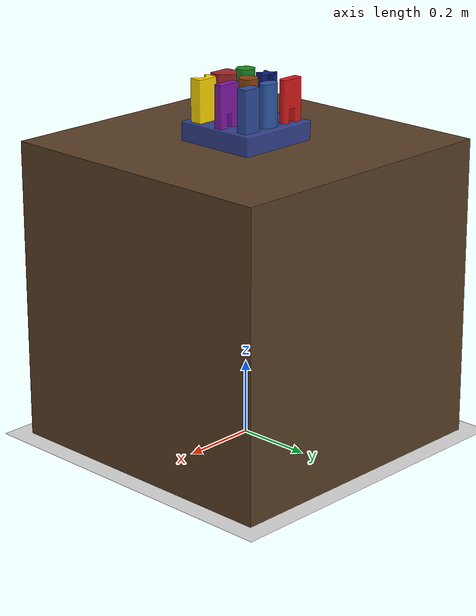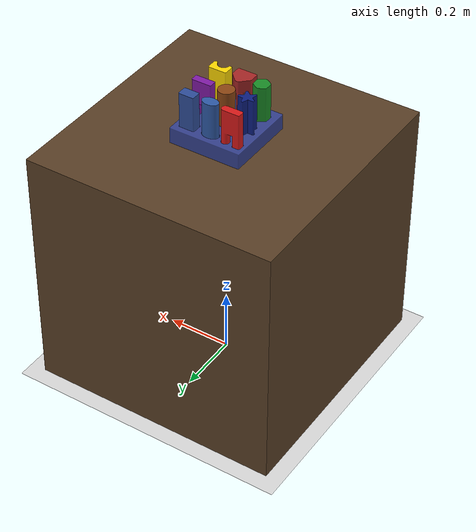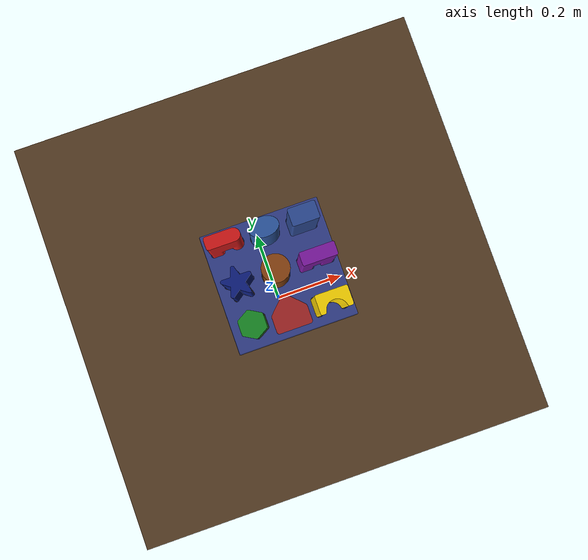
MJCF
<mujoco model="FMB L long">
  <compiler angle="radian" autolimits="true" meshdir="obj" texturedir="obj"/>
  <option integrator="RK4"/>
  <visual><global offwidth="1280" offheight="960"/></visual>
  <include file="floor_isaac.xml"/>
  <asset>
    <texture type="2d" name="light_wood" file="light_wood_v3.png"/>
    <material name="wt" texture="light_wood" specular="0.5" shininess="0.5" rgba="0.5 0.5 0.5 1"/>
    <mesh name="board_vis" file="hole_board_1/hole_board_1.obj"/>
    <mesh name="bc0" file="hole_board_1/hole_board_1_collision_0.obj"/>
    <mesh name="bc1" file="hole_board_1/hole_board_1_collision_1.obj"/>
    <mesh name="bc2" file="hole_board_1/hole_board_1_collision_10.obj"/>
    <mesh name="bc3" file="hole_board_1/hole_board_1_collision_100.obj"/>
    <mesh name="bc4" file="hole_board_1/hole_board_1_collision_101.obj"/>
    <mesh name="bc5" file="hole_board_1/hole_board_1_collision_102.obj"/>
    <mesh name="bc6" file="hole_board_1/hole_board_1_collision_103.obj"/>
    <mesh name="bc7" file="hole_board_1/hole_board_1_collision_104.obj"/>
    <mesh name="bc8" file="hole_board_1/hole_board_1_collision_105.obj"/>
    <mesh name="bc9" file="hole_board_1/hole_board_1_collision_106.obj"/>
    <mesh name="bc10" file="hole_board_1/hole_board_1_collision_107.obj"/>
    <mesh name="bc11" file="hole_board_1/hole_board_1_collision_108.obj"/>
    <mesh name="bc12" file="hole_board_1/hole_board_1_collision_109.obj"/>
    <mesh name="bc13" file="hole_board_1/hole_board_1_collision_11.obj"/>
    <mesh name="bc14" file="hole_board_1/hole_board_1_collision_110.obj"/>
    <mesh name="bc15" file="hole_board_1/hole_board_1_collision_111.obj"/>
    <mesh name="bc16" file="hole_board_1/hole_board_1_collision_112.obj"/>
    <mesh name="bc17" file="hole_board_1/hole_board_1_collision_113.obj"/>
    <mesh name="bc18" file="hole_board_1/hole_board_1_collision_114.obj"/>
    <mesh name="bc19" file="hole_board_1/hole_board_1_collision_115.obj"/>
    <mesh name="bc20" file="hole_board_1/hole_board_1_collision_116.obj"/>
    <mesh name="bc21" file="hole_board_1/hole_board_1_collision_117.obj"/>
    <mesh name="bc22" file="hole_board_1/hole_board_1_collision_118.obj"/>
    <mesh name="bc23" file="hole_board_1/hole_board_1_collision_119.obj"/>
    <mesh name="bc24" file="hole_board_1/hole_board_1_collision_12.obj"/>
    <mesh name="bc25" file="hole_board_1/hole_board_1_collision_120.obj"/>
    <mesh name="bc26" file="hole_board_1/hole_board_1_collision_121.obj"/>
    <mesh name="bc27" file="hole_board_1/hole_board_1_collision_122.obj"/>
    <mesh name="bc28" file="hole_board_1/hole_board_1_collision_123.obj"/>
    <mesh name="bc29" file="hole_board_1/hole_board_1_collision_124.obj"/>
    <mesh name="bc30" file="hole_board_1/hole_board_1_collision_125.obj"/>
    <mesh name="bc31" file="hole_board_1/hole_board_1_collision_126.obj"/>
    <mesh name="bc32" file="hole_board_1/hole_board_1_collision_127.obj"/>
    <mesh name="bc33" file="hole_board_1/hole_board_1_collision_128.obj"/>
    <mesh name="bc34" file="hole_board_1/hole_board_1_collision_13.obj"/>
    <mesh name="bc35" file="hole_board_1/hole_board_1_collision_14.obj"/>
    <mesh name="bc36" file="hole_board_1/hole_board_1_collision_15.obj"/>
    <mesh name="bc37" file="hole_board_1/hole_board_1_collision_16.obj"/>
    <mesh name="bc38" file="hole_board_1/hole_board_1_collision_17.obj"/>
    <mesh name="bc39" file="hole_board_1/hole_board_1_collision_18.obj"/>
    <mesh name="bc40" file="hole_board_1/hole_board_1_collision_19.obj"/>
    <mesh name="bc41" file="hole_board_1/hole_board_1_collision_2.obj"/>
    <mesh name="bc42" file="hole_board_1/hole_board_1_collision_20.obj"/>
    <mesh name="bc43" file="hole_board_1/hole_board_1_collision_21.obj"/>
    <mesh name="bc44" file="hole_board_1/hole_board_1_collision_22.obj"/>
    <mesh name="bc45" file="hole_board_1/hole_board_1_collision_23.obj"/>
    <mesh name="bc46" file="hole_board_1/hole_board_1_collision_24.obj"/>
    <mesh name="bc47" file="hole_board_1/hole_board_1_collision_25.obj"/>
    <mesh name="bc48" file="hole_board_1/hole_board_1_collision_26.obj"/>
    <mesh name="bc49" file="hole_board_1/hole_board_1_collision_27.obj"/>
    <mesh name="bc50" file="hole_board_1/hole_board_1_collision_28.obj"/>
    <mesh name="bc51" file="hole_board_1/hole_board_1_collision_29.obj"/>
    <mesh name="bc52" file="hole_board_1/hole_board_1_collision_3.obj"/>
    <mesh name="bc53" file="hole_board_1/hole_board_1_collision_30.obj"/>
    <mesh name="bc54" file="hole_board_1/hole_board_1_collision_31.obj"/>
    <mesh name="bc55" file="hole_board_1/hole_board_1_collision_32.obj"/>
    <mesh name="bc56" file="hole_board_1/hole_board_1_collision_33.obj"/>
    <mesh name="bc57" file="hole_board_1/hole_board_1_collision_34.obj"/>
    <mesh name="bc58" file="hole_board_1/hole_board_1_collision_35.obj"/>
    <mesh name="bc59" file="hole_board_1/hole_board_1_collision_36.obj"/>
    <mesh name="bc60" file="hole_board_1/hole_board_1_collision_37.obj"/>
    <mesh name="bc61" file="hole_board_1/hole_board_1_collision_38.obj"/>
    <mesh name="bc62" file="hole_board_1/hole_board_1_collision_39.obj"/>
    <mesh name="bc63" file="hole_board_1/hole_board_1_collision_4.obj"/>
    <mesh name="bc64" file="hole_board_1/hole_board_1_collision_40.obj"/>
    <mesh name="bc65" file="hole_board_1/hole_board_1_collision_41.obj"/>
    <mesh name="bc66" file="hole_board_1/hole_board_1_collision_42.obj"/>
    <mesh name="bc67" file="hole_board_1/hole_board_1_collision_43.obj"/>
    <mesh name="bc68" file="hole_board_1/hole_board_1_collision_44.obj"/>
    <mesh name="bc69" file="hole_board_1/hole_board_1_collision_45.obj"/>
    <mesh name="bc70" file="hole_board_1/hole_board_1_collision_46.obj"/>
    <mesh name="bc71" file="hole_board_1/hole_board_1_collision_47.obj"/>
    <mesh name="bc72" file="hole_board_1/hole_board_1_collision_48.obj"/>
    <mesh name="bc73" file="hole_board_1/hole_board_1_collision_49.obj"/>
    <mesh name="bc74" file="hole_board_1/hole_board_1_collision_5.obj"/>
    <mesh name="bc75" file="hole_board_1/hole_board_1_collision_50.obj"/>
    <mesh name="bc76" file="hole_board_1/hole_board_1_collision_51.obj"/>
    <mesh name="bc77" file="hole_board_1/hole_board_1_collision_52.obj"/>
    <mesh name="bc78" file="hole_board_1/hole_board_1_collision_53.obj"/>
    <mesh name="bc79" file="hole_board_1/hole_board_1_collision_54.obj"/>
    <mesh name="bc80" file="hole_board_1/hole_board_1_collision_55.obj"/>
    <mesh name="bc81" file="hole_board_1/hole_board_1_collision_56.obj"/>
    <mesh name="bc82" file="hole_board_1/hole_board_1_collision_57.obj"/>
    <mesh name="bc83" file="hole_board_1/hole_board_1_collision_58.obj"/>
    <mesh name="bc84" file="hole_board_1/hole_board_1_collision_59.obj"/>
    <mesh name="bc85" file="hole_board_1/hole_board_1_collision_6.obj"/>
    <mesh name="bc86" file="hole_board_1/hole_board_1_collision_60.obj"/>
    <mesh name="bc87" file="hole_board_1/hole_board_1_collision_61.obj"/>
    <mesh name="bc88" file="hole_board_1/hole_board_1_collision_62.obj"/>
    <mesh name="bc89" file="hole_board_1/hole_board_1_collision_63.obj"/>
    <mesh name="bc90" file="hole_board_1/hole_board_1_collision_64.obj"/>
    <mesh name="bc91" file="hole_board_1/hole_board_1_collision_65.obj"/>
    <mesh name="bc92" file="hole_board_1/hole_board_1_collision_66.obj"/>
    <mesh name="bc93" file="hole_board_1/hole_board_1_collision_67.obj"/>
    <mesh name="bc94" file="hole_board_1/hole_board_1_collision_68.obj"/>
    <mesh name="bc95" file="hole_board_1/hole_board_1_collision_69.obj"/>
    <mesh name="bc96" file="hole_board_1/hole_board_1_collision_7.obj"/>
    <mesh name="bc97" file="hole_board_1/hole_board_1_collision_70.obj"/>
    <mesh name="bc98" file="hole_board_1/hole_board_1_collision_71.obj"/>
    <mesh name="bc99" file="hole_board_1/hole_board_1_collision_72.obj"/>
    <mesh name="bc100" file="hole_board_1/hole_board_1_collision_73.obj"/>
    <mesh name="bc101" file="hole_board_1/hole_board_1_collision_74.obj"/>
    <mesh name="bc102" file="hole_board_1/hole_board_1_collision_75.obj"/>
    <mesh name="bc103" file="hole_board_1/hole_board_1_collision_76.obj"/>
    <mesh name="bc104" file="hole_board_1/hole_board_1_collision_77.obj"/>
    <mesh name="bc105" file="hole_board_1/hole_board_1_collision_78.obj"/>
    <mesh name="bc106" file="hole_board_1/hole_board_1_collision_79.obj"/>
    <mesh name="bc107" file="hole_board_1/hole_board_1_collision_8.obj"/>
    <mesh name="bc108" file="hole_board_1/hole_board_1_collision_80.obj"/>
    <mesh name="bc109" file="hole_board_1/hole_board_1_collision_81.obj"/>
    <mesh name="bc110" file="hole_board_1/hole_board_1_collision_82.obj"/>
    <mesh name="bc111" file="hole_board_1/hole_board_1_collision_83.obj"/>
    <mesh name="bc112" file="hole_board_1/hole_board_1_collision_84.obj"/>
    <mesh name="bc113" file="hole_board_1/hole_board_1_collision_85.obj"/>
    <mesh name="bc114" file="hole_board_1/hole_board_1_collision_86.obj"/>
    <mesh name="bc115" file="hole_board_1/hole_board_1_collision_87.obj"/>
    <mesh name="bc116" file="hole_board_1/hole_board_1_collision_88.obj"/>
    <mesh name="bc117" file="hole_board_1/hole_board_1_collision_89.obj"/>
    <mesh name="bc118" file="hole_board_1/hole_board_1_collision_9.obj"/>
    <mesh name="bc119" file="hole_board_1/hole_board_1_collision_90.obj"/>
    <mesh name="bc120" file="hole_board_1/hole_board_1_collision_91.obj"/>
    <mesh name="bc121" file="hole_board_1/hole_board_1_collision_92.obj"/>
    <mesh name="bc122" file="hole_board_1/hole_board_1_collision_93.obj"/>
    <mesh name="bc123" file="hole_board_1/hole_board_1_collision_94.obj"/>
    <mesh name="bc124" file="hole_board_1/hole_board_1_collision_95.obj"/>
    <mesh name="bc125" file="hole_board_1/hole_board_1_collision_96.obj"/>
    <mesh name="bc126" file="hole_board_1/hole_board_1_collision_97.obj"/>
    <mesh name="bc127" file="hole_board_1/hole_board_1_collision_98.obj"/>
    <mesh name="bc128" file="hole_board_1/hole_board_1_collision_99.obj"/>
    <mesh name="peg_circle_L_long" file="peg_circle_L_long/peg_circle_L_long.obj"/>
    <mesh name="peg_circle_L_long_c0" file="peg_circle_L_long/peg_circle_L_long_collision_0.obj"/>
    <mesh name="peg_oval_L_long" file="peg_oval_L_long/peg_oval_L_long.obj"/>
    <mesh name="peg_oval_L_long_c0" file="peg_oval_L_long/peg_oval_L_long_collision_0.obj"/>
    <mesh name="peg_rectangle_L_long" file="peg_rectangle_L_long/peg_rectangle_L_long.obj"/>
    <mesh name="peg_rectangle_L_long_c0" file="peg_rectangle_L_long/peg_rectangle_L_long_collision_0.obj"/>
    <mesh name="peg_hexagon_L_long" file="peg_hexagon_L_long/peg_hexagon_L_long.obj"/>
    <mesh name="peg_hexagon_L_long_c0" file="peg_hexagon_L_long/peg_hexagon_L_long_collision_0.obj"/>
    <mesh name="peg_arch_L_long" file="peg_arch_L_long/peg_arch_L_long.obj"/>
    <mesh name="peg_arch_L_long_c0" file="peg_arch_L_long/peg_arch_L_long_collision_0.obj"/>
    <mesh name="peg_arch_L_long_c1" file="peg_arch_L_long/peg_arch_L_long_collision_1.obj"/>
    <mesh name="peg_star_L_long" file="peg_star_L_long/peg_star_L_long.obj"/>
    <mesh name="peg_star_L_long_c0" file="peg_star_L_long/peg_star_L_long_collision_0.obj"/>
    <mesh name="peg_star_L_long_c1" file="peg_star_L_long/peg_star_L_long_collision_1.obj"/>
    <mesh name="peg_star_L_long_c2" file="peg_star_L_long/peg_star_L_long_collision_2.obj"/>
    <mesh name="peg_star_L_long_c3" file="peg_star_L_long/peg_star_L_long_collision_3.obj"/>
    <mesh name="peg_3prong_L_long" file="peg_3prong_L_long/peg_3prong_L_long.obj"/>
    <mesh name="peg_3prong_L_long_c0" file="peg_3prong_L_long/peg_3prong_L_long_collision_0.obj"/>
    <mesh name="peg_3prong_L_long_c1" file="peg_3prong_L_long/peg_3prong_L_long_collision_1.obj"/>
    <mesh name="peg_3prong_L_long_c10" file="peg_3prong_L_long/peg_3prong_L_long_collision_10.obj"/>
    <mesh name="peg_3prong_L_long_c11" file="peg_3prong_L_long/peg_3prong_L_long_collision_11.obj"/>
    <mesh name="peg_3prong_L_long_c2" file="peg_3prong_L_long/peg_3prong_L_long_collision_2.obj"/>
    <mesh name="peg_3prong_L_long_c3" file="peg_3prong_L_long/peg_3prong_L_long_collision_3.obj"/>
    <mesh name="peg_3prong_L_long_c4" file="peg_3prong_L_long/peg_3prong_L_long_collision_4.obj"/>
    <mesh name="peg_3prong_L_long_c5" file="peg_3prong_L_long/peg_3prong_L_long_collision_5.obj"/>
    <mesh name="peg_3prong_L_long_c6" file="peg_3prong_L_long/peg_3prong_L_long_collision_6.obj"/>
    <mesh name="peg_3prong_L_long_c7" file="peg_3prong_L_long/peg_3prong_L_long_collision_7.obj"/>
    <mesh name="peg_3prong_L_long_c8" file="peg_3prong_L_long/peg_3prong_L_long_collision_8.obj"/>
    <mesh name="peg_3prong_L_long_c9" file="peg_3prong_L_long/peg_3prong_L_long_collision_9.obj"/>
    <mesh name="peg_doublesquare_L_long" file="peg_doublesquare_L_long/peg_doublesquare_L_long.obj"/>
    <mesh name="peg_doublesquare_L_long_c0" file="peg_doublesquare_L_long/peg_doublesquare_L_long_collision_0.obj"/>
    <mesh name="peg_doublesquare_L_long_c1" file="peg_doublesquare_L_long/peg_doublesquare_L_long_collision_1.obj"/>
    <mesh name="peg_doublesquare_L_long_c2" file="peg_doublesquare_L_long/peg_doublesquare_L_long_collision_2.obj"/>
    <mesh name="peg_squarecircle_L_long" file="peg_squarecircle_L_long/peg_squarecircle_L_long.obj"/>
    <mesh name="peg_squarecircle_L_long_c0" file="peg_squarecircle_L_long/peg_squarecircle_L_long_collision_0.obj"/>
    <mesh name="peg_squarecircle_L_long_c1" file="peg_squarecircle_L_long/peg_squarecircle_L_long_collision_1.obj"/>
    <mesh name="peg_squarecircle_L_long_c2" file="peg_squarecircle_L_long/peg_squarecircle_L_long_collision_2.obj"/>
  </asset>
  <worldbody>
    <body name="table"><geom type="box" size="0.4 0.4 0.4" pos="0 0 0.4" material="wt" mass="100"/></body>
    <body name="board" pos="0 0 0.8">
      <geom mesh="board_vis" group="2" type="mesh" contype="0" conaffinity="0" rgba="0.2 0.25 0.55 1"/>
      <geom mesh="bc0" type="mesh" rgba="0 0 0 0"/>
      <geom mesh="bc1" type="mesh" rgba="0 0 0 0"/>
      <geom mesh="bc2" type="mesh" rgba="0 0 0 0"/>
      <geom mesh="bc3" type="mesh" rgba="0 0 0 0"/>
      <geom mesh="bc4" type="mesh" rgba="0 0 0 0"/>
      <geom mesh="bc5" type="mesh" rgba="0 0 0 0"/>
      <geom mesh="bc6" type="mesh" rgba="0 0 0 0"/>
      <geom mesh="bc7" type="mesh" rgba="0 0 0 0"/>
      <geom mesh="bc8" type="mesh" rgba="0 0 0 0"/>
      <geom mesh="bc9" type="mesh" rgba="0 0 0 0"/>
      <geom mesh="bc10" type="mesh" rgba="0 0 0 0"/>
      <geom mesh="bc11" type="mesh" rgba="0 0 0 0"/>
      <geom mesh="bc12" type="mesh" rgba="0 0 0 0"/>
      <geom mesh="bc13" type="mesh" rgba="0 0 0 0"/>
      <geom mesh="bc14" type="mesh" rgba="0 0 0 0"/>
      <geom mesh="bc15" type="mesh" rgba="0 0 0 0"/>
      <geom mesh="bc16" type="mesh" rgba="0 0 0 0"/>
      <geom mesh="bc17" type="mesh" rgba="0 0 0 0"/>
      <geom mesh="bc18" type="mesh" rgba="0 0 0 0"/>
      <geom mesh="bc19" type="mesh" rgba="0 0 0 0"/>
      <geom mesh="bc20" type="mesh" rgba="0 0 0 0"/>
      <geom mesh="bc21" type="mesh" rgba="0 0 0 0"/>
      <geom mesh="bc22" type="mesh" rgba="0 0 0 0"/>
      <geom mesh="bc23" type="mesh" rgba="0 0 0 0"/>
      <geom mesh="bc24" type="mesh" rgba="0 0 0 0"/>
      <geom mesh="bc25" type="mesh" rgba="0 0 0 0"/>
      <geom mesh="bc26" type="mesh" rgba="0 0 0 0"/>
      <geom mesh="bc27" type="mesh" rgba="0 0 0 0"/>
      <geom mesh="bc28" type="mesh" rgba="0 0 0 0"/>
      <geom mesh="bc29" type="mesh" rgba="0 0 0 0"/>
      <geom mesh="bc30" type="mesh" rgba="0 0 0 0"/>
      <geom mesh="bc31" type="mesh" rgba="0 0 0 0"/>
      <geom mesh="bc32" type="mesh" rgba="0 0 0 0"/>
      <geom mesh="bc33" type="mesh" rgba="0 0 0 0"/>
      <geom mesh="bc34" type="mesh" rgba="0 0 0 0"/>
      <geom mesh="bc35" type="mesh" rgba="0 0 0 0"/>
      <geom mesh="bc36" type="mesh" rgba="0 0 0 0"/>
      <geom mesh="bc37" type="mesh" rgba="0 0 0 0"/>
      <geom mesh="bc38" type="mesh" rgba="0 0 0 0"/>
      <geom mesh="bc39" type="mesh" rgba="0 0 0 0"/>
      <geom mesh="bc40" type="mesh" rgba="0 0 0 0"/>
      <geom mesh="bc41" type="mesh" rgba="0 0 0 0"/>
      <geom mesh="bc42" type="mesh" rgba="0 0 0 0"/>
      <geom mesh="bc43" type="mesh" rgba="0 0 0 0"/>
      <geom mesh="bc44" type="mesh" rgba="0 0 0 0"/>
      <geom mesh="bc45" type="mesh" rgba="0 0 0 0"/>
      <geom mesh="bc46" type="mesh" rgba="0 0 0 0"/>
      <geom mesh="bc47" type="mesh" rgba="0 0 0 0"/>
      <geom mesh="bc48" type="mesh" rgba="0 0 0 0"/>
      <geom mesh="bc49" type="mesh" rgba="0 0 0 0"/>
      <geom mesh="bc50" type="mesh" rgba="0 0 0 0"/>
      <geom mesh="bc51" type="mesh" rgba="0 0 0 0"/>
      <geom mesh="bc52" type="mesh" rgba="0 0 0 0"/>
      <geom mesh="bc53" type="mesh" rgba="0 0 0 0"/>
      <geom mesh="bc54" type="mesh" rgba="0 0 0 0"/>
      <geom mesh="bc55" type="mesh" rgba="0 0 0 0"/>
      <geom mesh="bc56" type="mesh" rgba="0 0 0 0"/>
      <geom mesh="bc57" type="mesh" rgba="0 0 0 0"/>
      <geom mesh="bc58" type="mesh" rgba="0 0 0 0"/>
      <geom mesh="bc59" type="mesh" rgba="0 0 0 0"/>
      <geom mesh="bc60" type="mesh" rgba="0 0 0 0"/>
      <geom mesh="bc61" type="mesh" rgba="0 0 0 0"/>
      <geom mesh="bc62" type="mesh" rgba="0 0 0 0"/>
      <geom mesh="bc63" type="mesh" rgba="0 0 0 0"/>
      <geom mesh="bc64" type="mesh" rgba="0 0 0 0"/>
      <geom mesh="bc65" type="mesh" rgba="0 0 0 0"/>
      <geom mesh="bc66" type="mesh" rgba="0 0 0 0"/>
      <geom mesh="bc67" type="mesh" rgba="0 0 0 0"/>
      <geom mesh="bc68" type="mesh" rgba="0 0 0 0"/>
      <geom mesh="bc69" type="mesh" rgba="0 0 0 0"/>
      <geom mesh="bc70" type="mesh" rgba="0 0 0 0"/>
      <geom mesh="bc71" type="mesh" rgba="0 0 0 0"/>
      <geom mesh="bc72" type="mesh" rgba="0 0 0 0"/>
      <geom mesh="bc73" type="mesh" rgba="0 0 0 0"/>
      <geom mesh="bc74" type="mesh" rgba="0 0 0 0"/>
      <geom mesh="bc75" type="mesh" rgba="0 0 0 0"/>
      <geom mesh="bc76" type="mesh" rgba="0 0 0 0"/>
      <geom mesh="bc77" type="mesh" rgba="0 0 0 0"/>
      <geom mesh="bc78" type="mesh" rgba="0 0 0 0"/>
      <geom mesh="bc79" type="mesh" rgba="0 0 0 0"/>
      <geom mesh="bc80" type="mesh" rgba="0 0 0 0"/>
      <geom mesh="bc81" type="mesh" rgba="0 0 0 0"/>
      <geom mesh="bc82" type="mesh" rgba="0 0 0 0"/>
      <geom mesh="bc83" type="mesh" rgba="0 0 0 0"/>
      <geom mesh="bc84" type="mesh" rgba="0 0 0 0"/>
      <geom mesh="bc85" type="mesh" rgba="0 0 0 0"/>
      <geom mesh="bc86" type="mesh" rgba="0 0 0 0"/>
      <geom mesh="bc87" type="mesh" rgba="0 0 0 0"/>
      <geom mesh="bc88" type="mesh" rgba="0 0 0 0"/>
      <geom mesh="bc89" type="mesh" rgba="0 0 0 0"/>
      <geom mesh="bc90" type="mesh" rgba="0 0 0 0"/>
      <geom mesh="bc91" type="mesh" rgba="0 0 0 0"/>
      <geom mesh="bc92" type="mesh" rgba="0 0 0 0"/>
      <geom mesh="bc93" type="mesh" rgba="0 0 0 0"/>
      <geom mesh="bc94" type="mesh" rgba="0 0 0 0"/>
      <geom mesh="bc95" type="mesh" rgba="0 0 0 0"/>
      <geom mesh="bc96" type="mesh" rgba="0 0 0 0"/>
      <geom mesh="bc97" type="mesh" rgba="0 0 0 0"/>
      <geom mesh="bc98" type="mesh" rgba="0 0 0 0"/>
      <geom mesh="bc99" type="mesh" rgba="0 0 0 0"/>
      <geom mesh="bc100" type="mesh" rgba="0 0 0 0"/>
      <geom mesh="bc101" type="mesh" rgba="0 0 0 0"/>
      <geom mesh="bc102" type="mesh" rgba="0 0 0 0"/>
      <geom mesh="bc103" type="mesh" rgba="0 0 0 0"/>
      <geom mesh="bc104" type="mesh" rgba="0 0 0 0"/>
      <geom mesh="bc105" type="mesh" rgba="0 0 0 0"/>
      <geom mesh="bc106" type="mesh" rgba="0 0 0 0"/>
      <geom mesh="bc107" type="mesh" rgba="0 0 0 0"/>
      <geom mesh="bc108" type="mesh" rgba="0 0 0 0"/>
      <geom mesh="bc109" type="mesh" rgba="0 0 0 0"/>
      <geom mesh="bc110" type="mesh" rgba="0 0 0 0"/>
      <geom mesh="bc111" type="mesh" rgba="0 0 0 0"/>
      <geom mesh="bc112" type="mesh" rgba="0 0 0 0"/>
      <geom mesh="bc113" type="mesh" rgba="0 0 0 0"/>
      <geom mesh="bc114" type="mesh" rgba="0 0 0 0"/>
      <geom mesh="bc115" type="mesh" rgba="0 0 0 0"/>
      <geom mesh="bc116" type="mesh" rgba="0 0 0 0"/>
      <geom mesh="bc117" type="mesh" rgba="0 0 0 0"/>
      <geom mesh="bc118" type="mesh" rgba="0 0 0 0"/>
      <geom mesh="bc119" type="mesh" rgba="0 0 0 0"/>
      <geom mesh="bc120" type="mesh" rgba="0 0 0 0"/>
      <geom mesh="bc121" type="mesh" rgba="0 0 0 0"/>
      <geom mesh="bc122" type="mesh" rgba="0 0 0 0"/>
      <geom mesh="bc123" type="mesh" rgba="0 0 0 0"/>
      <geom mesh="bc124" type="mesh" rgba="0 0 0 0"/>
      <geom mesh="bc125" type="mesh" rgba="0 0 0 0"/>
      <geom mesh="bc126" type="mesh" rgba="0 0 0 0"/>
      <geom mesh="bc127" type="mesh" rgba="0 0 0 0"/>
      <geom mesh="bc128" type="mesh" rgba="0 0 0 0"/>
      <geom type="box" pos="0 0 0.005" size="0.115 0.115 0.005" rgba="0 0 0 0"/>
      <geom type="box" pos="-0.112 0 0.025" size="0.003 0.115 0.025" rgba="0 0 0 0"/>
      <geom type="box" pos="0.112 0 0.025" size="0.003 0.115 0.025" rgba="0 0 0 0"/>
      <geom type="box" pos="0 0.112 0.025" size="0.115 0.003 0.025" rgba="0 0 0 0"/>
      <geom type="box" pos="0 -0.112 0.025" size="0.115 0.003 0.025" rgba="0 0 0 0"/>
      <geom type="box" pos="-0.04 -0.0687 0.025" size="0.003 0.0463 0.025" rgba="0 0 0 0"/>
      <geom type="box" pos="-0.04 0.0518 0.025" size="0.003 0.0158 0.025" rgba="0 0 0 0"/>
      <geom type="box" pos="-0.04 0.1063 0.025" size="0.003 0.0087 0.025" rgba="0 0 0 0"/>
      <geom type="box" pos="0.0295 -0.0290 0.025" size="0.003 0.0860 0.025" rgba="0 0 0 0"/>
      <geom type="box" pos="0.0295 0.1070 0.025" size="0.003 0.0080 0.025" rgba="0 0 0 0"/>
      <geom type="box" pos="0.0000 -0.035 0.025" size="0.1150 0.003 0.025" rgba="0 0 0 0"/>
      <geom type="box" pos="-0.1087 0.036 0.025" size="0.0063 0.003 0.025" rgba="0 0 0 0"/>
      <geom type="box" pos="-0.0365 0.036 0.025" size="0.0050 0.003 0.025" rgba="0 0 0 0"/>
      <geom type="box" pos="0.0700 0.036 0.025" size="0.0450 0.003 0.025" rgba="0 0 0 0"/>
    </body>
    <body name="circle" pos="-0.0032499999999999057 0.005000000000000102 0.811">
      <joint type="free"/>
      <geom mesh="peg_circle_L_long" group="2" type="mesh" contype="0" conaffinity="0" rgba="0.55 0.27 0.07 1"/>
      <geom mesh="peg_circle_L_long_c0" type="mesh" rgba="0 0 0 0"/>
    </body>
    <body name="oval" pos="0.001000000000000098 0.07800000000000017 0.811">
      <joint type="free"/>
      <geom mesh="peg_oval_L_long" group="2" type="mesh" contype="0" conaffinity="0" rgba="0.18 0.35 0.65 1"/>
      <geom mesh="peg_oval_L_long_c0" type="mesh" rgba="0 0 0 0"/>
    </body>
    <body name="rectangle" pos="0.07225000000000016 0.07725000000000017 0.811">
      <joint type="free"/>
      <geom mesh="peg_rectangle_L_long" group="2" type="mesh" contype="0" conaffinity="0" rgba="0.18 0.3 0.6 1"/>
      <geom mesh="peg_rectangle_L_long_c0" type="mesh" rgba="0 0 0 0"/>
    </body>
    <body name="hexagon" pos="-0.07124999999999997 -0.07124999999999997 0.811">
      <joint type="free"/>
      <geom mesh="peg_hexagon_L_long" group="2" type="mesh" contype="0" conaffinity="0" rgba="0.1 0.55 0.15 1"/>
      <geom mesh="peg_hexagon_L_long_c0" type="mesh" rgba="0 0 0 0"/>
    </body>
    <body name="arch" pos="0.07175000000000016 -0.07799999999999997 0.811">
      <joint type="free"/>
      <geom mesh="peg_arch_L_long" group="2" type="mesh" contype="0" conaffinity="0" rgba="1.0 0.85 0.0 1"/>
      <geom mesh="peg_arch_L_long_c0" type="mesh" rgba="0 0 0 0"/>
      <geom mesh="peg_arch_L_long_c1" type="mesh" rgba="0 0 0 0"/>
    </body>
    <body name="star" pos="-0.07199999999999997 0.006750000000000103 0.811">
      <joint type="free"/>
      <geom mesh="peg_star_L_long" group="2" type="mesh" contype="0" conaffinity="0" rgba="0.05 0.12 0.5 1"/>
      <geom mesh="peg_star_L_long_c0" type="mesh" rgba="0 0 0 0"/>
      <geom mesh="peg_star_L_long_c1" type="mesh" rgba="0 0 0 0"/>
      <geom mesh="peg_star_L_long_c2" type="mesh" rgba="0 0 0 0"/>
      <geom mesh="peg_star_L_long_c3" type="mesh" rgba="0 0 0 0"/>
    </body>
    <body name="3prong" pos="-0.005499999999999908 -0.07224985249999996 0.9610000000000001" quat="0 1 0 0">
      <joint type="free"/>
      <geom mesh="peg_3prong_L_long" group="2" type="mesh" contype="0" conaffinity="0" rgba="0.65 0.15 0.15 1"/>
      <geom mesh="peg_3prong_L_long_c0" type="mesh" rgba="0 0 0 0"/>
      <geom mesh="peg_3prong_L_long_c1" type="mesh" rgba="0 0 0 0"/>
      <geom mesh="peg_3prong_L_long_c10" type="mesh" rgba="0 0 0 0"/>
      <geom mesh="peg_3prong_L_long_c11" type="mesh" rgba="0 0 0 0"/>
      <geom mesh="peg_3prong_L_long_c2" type="mesh" rgba="0 0 0 0"/>
      <geom mesh="peg_3prong_L_long_c3" type="mesh" rgba="0 0 0 0"/>
      <geom mesh="peg_3prong_L_long_c4" type="mesh" rgba="0 0 0 0"/>
      <geom mesh="peg_3prong_L_long_c5" type="mesh" rgba="0 0 0 0"/>
      <geom mesh="peg_3prong_L_long_c6" type="mesh" rgba="0 0 0 0"/>
      <geom mesh="peg_3prong_L_long_c7" type="mesh" rgba="0 0 0 0"/>
      <geom mesh="peg_3prong_L_long_c8" type="mesh" rgba="0 0 0 0"/>
      <geom mesh="peg_3prong_L_long_c9" type="mesh" rgba="0 0 0 0"/>
    </body>
    <body name="doublesquare" pos="0.07325000000000016 0.004500000000000101 0.9610000000000001" quat="0 1 0 0">
      <joint type="free"/>
      <geom mesh="peg_doublesquare_L_long" group="2" type="mesh" contype="0" conaffinity="0" rgba="0.5 0.1 0.65 1"/>
      <geom mesh="peg_doublesquare_L_long_c0" type="mesh" rgba="0 0 0 0"/>
      <geom mesh="peg_doublesquare_L_long_c1" type="mesh" rgba="0 0 0 0"/>
      <geom mesh="peg_doublesquare_L_long_c2" type="mesh" rgba="0 0 0 0"/>
    </body>
    <body name="squarecircle" pos="-0.07149993849999997 0.08250000000000017 0.9610000000000001" quat="0 1 0 0">
      <joint type="free"/>
      <geom mesh="peg_squarecircle_L_long" group="2" type="mesh" contype="0" conaffinity="0" rgba="0.85 0.1 0.1 1"/>
      <geom mesh="peg_squarecircle_L_long_c0" type="mesh" rgba="0 0 0 0"/>
      <geom mesh="peg_squarecircle_L_long_c1" type="mesh" rgba="0 0 0 0"/>
      <geom mesh="peg_squarecircle_L_long_c2" type="mesh" rgba="0 0 0 0"/>
    </body>
  </worldbody>
  <keyframe><key name="aligned" qpos="-0.00325 0.005 0.809892 1 1.13118e-15 -5.07948e-18 2.90366e-20 0.00104781 0.0778541 0.809915 1 0.000676017 0.000144197 0.0003155 0.0714058 0.0761306 0.809912 0.999987 0.000762799 -0.000142944 -0.00499236 -0.0713162 -0.0713586 0.809925 1 0.000593828 -0.000457543 1.4812e-06 0.0722349 -0.0757192 0.81 1 -1.32726e-06 8.79788e-06 -0.000222676 -0.0720057 0.00675164 0.809978 1 -6.17061e-05 -0.000226261 6.35358e-06 -0.00547429 -0.072273 0.959965 -6.92548e-05 1 7.14701e-07 -7.68322e-05 0.073242 0.00425508 0.959954 -0.00064639 1 0.000220391 2.28984e-05 -0.0715088 0.0819354 0.959943 -0.000770773 0.999998 -0.00205571 5.80163e-05"/></keyframe>
</mujoco>

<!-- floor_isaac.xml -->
<mujoco model="floor and sky (isaac style)">

  <visual>
    <headlight diffuse="0.55 0.55 0.55" ambient="0.3 0.3 0.3" specular="0 0 0"/>
    <rgba haze="0.15 0.25 0.35 1"/>
  </visual>

  <asset>
    <!-- Sky -->
    <texture type="skybox" builtin="gradient" rgb1="0.3 0.5 0.7" rgb2="0 0 0" width="512" height="3072"/>
    <!-- Ground -->
    <texture type="2d" name="groundplane" builtin="checker" mark="edge" rgb1="0.9 0.9 0.9"
             rgb2="0.8 0.8 0.8" markrgb="0.8 0.8 0.8" width="1000" height="1000"/>
    <material name="groundplane" texture="groundplane" texuniform="true" texrepeat="1 1"
              reflectance="0.1"/>
  </asset>

  <worldbody>
    <light pos="1 -1 1.5" dir="-1 1 -1" diffuse="0.35 0.35 0.35" directional="true"/>
    <geom name="floor" group="1" size="0 0 0.05" type="plane" material="groundplane"/>
  </worldbody>

</mujoco>
